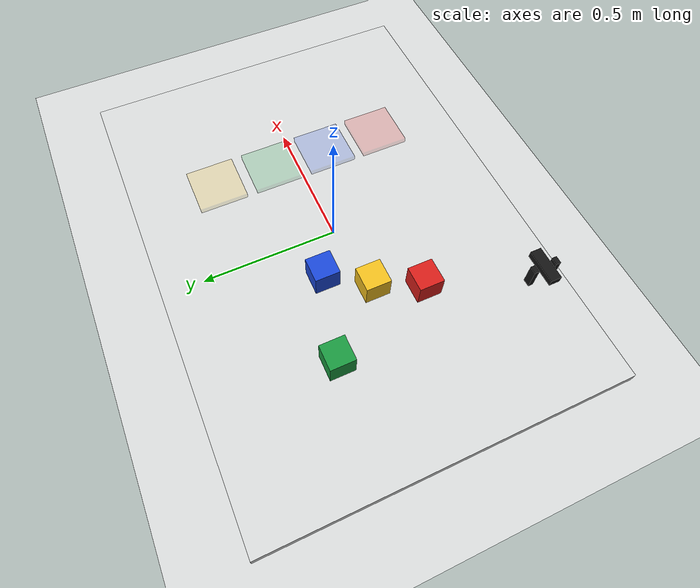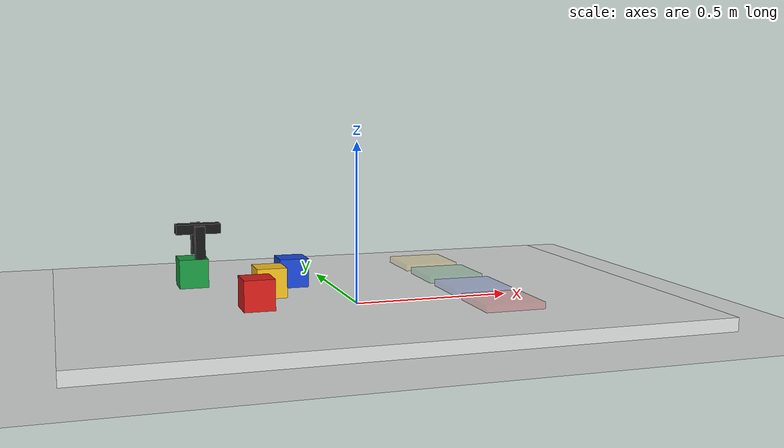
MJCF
<mujoco model="physical_ai_sorting_mvp">
  <compiler angle="degree" coordinate="local" inertiafromgeom="true"/>
  <option timestep="0.01" gravity="0 0 -9.81"/>

  <asset>
    <texture name="grid" type="2d" builtin="checker" rgb1="0.92 0.92 0.90" rgb2="0.78 0.80 0.82" width="256" height="256"/>
    <material name="table_mat" texture="grid" texrepeat="4 4" reflectance="0.1"/>
    <material name="red_mat" rgba="0.85 0.12 0.10 1"/>
    <material name="blue_mat" rgba="0.10 0.28 0.85 1"/>
    <material name="green_mat" rgba="0.10 0.60 0.25 1"/>
    <material name="yellow_mat" rgba="0.95 0.75 0.12 1"/>
    <material name="bin_red_mat" rgba="0.85 0.12 0.10 0.22"/>
    <material name="bin_blue_mat" rgba="0.10 0.28 0.85 0.22"/>
    <material name="bin_green_mat" rgba="0.10 0.60 0.25 0.22"/>
    <material name="bin_yellow_mat" rgba="0.95 0.75 0.12 0.22"/>
    <material name="gripper_mat" rgba="0.08 0.08 0.08 1"/>
  </asset>

  <worldbody>
    <light name="key" pos="0 -2.5 4" dir="0 0 -1" diffuse="0.85 0.85 0.85"/>
    <camera name="overview" pos="0 -2.4 1.9" xyaxes="1 0 0 0 0.58 0.82"/>

    <geom name="floor" type="plane" size="2.2 2.2 0.05" material="table_mat"/>
    <geom name="table" type="box" pos="0 0 0.02" size="0.9 0.65 0.02" material="table_mat"/>

    <body name="red_box" pos="-0.35 -0.18 0.09">
      <freejoint name="red_box_joint"/>
      <geom type="box" size="0.045 0.045 0.045" material="red_mat" mass="0.08"/>
    </body>
    <body name="blue_box" pos="-0.18 0.12 0.09">
      <freejoint name="blue_box_joint"/>
      <geom type="box" size="0.045 0.045 0.045" material="blue_mat" mass="0.08"/>
    </body>
    <body name="green_box" pos="-0.48 0.20 0.09">
      <freejoint name="green_box_joint"/>
      <geom type="box" size="0.045 0.045 0.045" material="green_mat" mass="0.08"/>
    </body>
    <body name="yellow_box" pos="-0.28 -0.02 0.09">
      <freejoint name="yellow_box_joint"/>
      <geom type="box" size="0.045 0.045 0.045" material="yellow_mat" mass="0.08"/>
    </body>

    <body name="red_bin" pos="0.34 -0.33 0.055">
      <geom type="box" size="0.09 0.09 0.01" material="bin_red_mat" contype="0" conaffinity="0"/>
    </body>
    <body name="blue_bin" pos="0.34 -0.11 0.055">
      <geom type="box" size="0.09 0.09 0.01" material="bin_blue_mat" contype="0" conaffinity="0"/>
    </body>
    <body name="green_bin" pos="0.34 0.11 0.055">
      <geom type="box" size="0.09 0.09 0.01" material="bin_green_mat" contype="0" conaffinity="0"/>
    </body>
    <body name="yellow_bin" pos="0.34 0.33 0.055">
      <geom type="box" size="0.09 0.09 0.01" material="bin_yellow_mat" contype="0" conaffinity="0"/>
    </body>

    <body name="gripper_marker" mocap="true" pos="-0.55 -0.45 0.32">
      <geom name="gripper_palm" type="box" size="0.055 0.018 0.012" material="gripper_mat" contype="0" conaffinity="0"/>
      <geom name="gripper_left_finger" type="box" pos="0 0.038 -0.03" size="0.012 0.008 0.04" material="gripper_mat" contype="0" conaffinity="0"/>
      <geom name="gripper_right_finger" type="box" pos="0 -0.038 -0.03" size="0.012 0.008 0.04" material="gripper_mat" contype="0" conaffinity="0"/>
    </body>
  </worldbody>
</mujoco>
